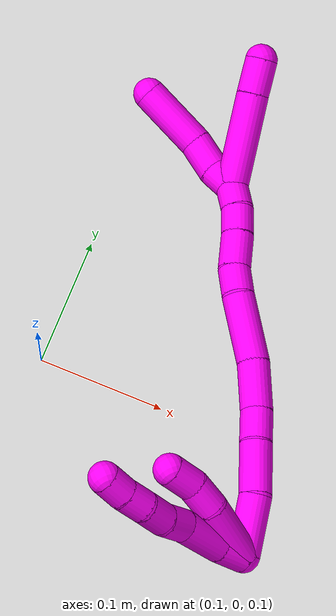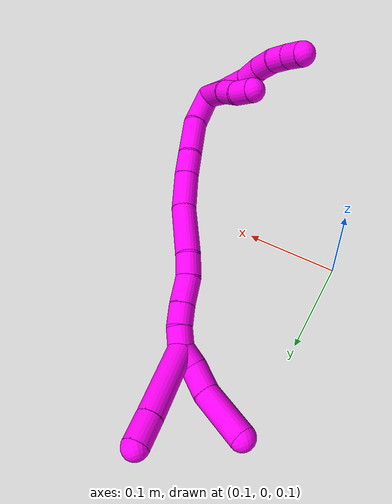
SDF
<sdf version="1.7">
 <world name="default">
  <model name="10">
   <static>0</static>
   <link name="10">
    <collision name="collision-cylinder-e_1_2_8">
     <pose>-0.009878 -0.005477 -0.004386 2.246 -0.953189 -1.64291</pose>
     <geometry><cylinder><radius>0.0125</radius><length>0.024234</length></cylinder></geometry>
     <surface>
      <friction><ode><mu>1.16</mu><mu2>1.16</mu2><slip1>0</slip1><slip2>0</slip2></ode></friction>
      <contact><ode><kp>1e+06</kp><kd>1</kd><max_vel>0</max_vel><min_depth>0.001</min_depth></ode></contact>
     </surface>
    </collision>
    <visual name="visual-cylinder-e_1_2_8">
     <pose>-0.009878 -0.005477 -0.004386 2.246 -0.953189 -1.64291</pose>
     <geometry><cylinder><radius>0.0125</radius><length>0.024234</length></cylinder></geometry>
     <material><ambient>1 0 0.964706 1</ambient></material>
    </visual>
    <collision name="collision-cylinder-e_2_8_9">
     <pose>-0.037315 -0.017435 -0.015379 2.36587 -1.08569 -1.95107</pose>
     <geometry><cylinder><radius>0.0125</radius><length>0.039695</length></cylinder></geometry>
     <surface>
      <friction><ode><mu>1.16</mu><mu2>1.16</mu2><slip1>0</slip1><slip2>0</slip2></ode></friction>
      <contact><ode><kp>1e+06</kp><kd>1</kd><max_vel>0</max_vel><min_depth>0.001</min_depth></ode></contact>
     </surface>
    </collision>
    <visual name="visual-cylinder-e_2_8_9">
     <pose>-0.037315 -0.017435 -0.015379 2.36587 -1.08569 -1.95107</pose>
     <geometry><cylinder><radius>0.0125</radius><length>0.039695</length></cylinder></geometry>
     <material><ambient>1 0 0.964706 1</ambient></material>
    </visual>
    <collision name="collision-cylinder-e_3_9_10">
     <pose>-0.065355 -0.02809 -0.023437 1.90524 -1.17177 -1.50166</pose>
     <geometry><cylinder><radius>0.0125</radius><length>0.022752</length></cylinder></geometry>
     <surface>
      <friction><ode><mu>1.16</mu><mu2>1.16</mu2><slip1>0</slip1><slip2>0</slip2></ode></friction>
      <contact><ode><kp>1e+06</kp><kd>1</kd><max_vel>0</max_vel><min_depth>0.001</min_depth></ode></contact>
     </surface>
    </collision>
    <visual name="visual-cylinder-e_3_9_10">
     <pose>-0.065355 -0.02809 -0.023437 1.90524 -1.17177 -1.50166</pose>
     <geometry><cylinder><radius>0.0125</radius><length>0.022752</length></cylinder></geometry>
     <material><ambient>1 0 0.964706 1</ambient></material>
    </visual>
    <collision name="collision-cylinder-e_4_10_11">
     <pose>-0.086082 -0.035325 -0.028633 2.45656 -1.12972 -2.11659</pose>
     <geometry><cylinder><radius>0.0125</radius><length>0.022657</length></cylinder></geometry>
     <surface>
      <friction><ode><mu>1.16</mu><mu2>1.16</mu2><slip1>0</slip1><slip2>0</slip2></ode></friction>
      <contact><ode><kp>1e+06</kp><kd>1</kd><max_vel>0</max_vel><min_depth>0.001</min_depth></ode></contact>
     </surface>
    </collision>
    <visual name="visual-cylinder-e_4_10_11">
     <pose>-0.086082 -0.035325 -0.028633 2.45656 -1.12972 -2.11659</pose>
     <geometry><cylinder><radius>0.0125</radius><length>0.022657</length></cylinder></geometry>
     <material><ambient>1 0 0.964706 1</ambient></material>
    </visual>
    <collision name="collision-cylinder-e_5_11_12">
     <pose>-0.104565 -0.041989 -0.03715 2.49478 -0.942933 -1.97841</pose>
     <geometry><cylinder><radius>0.0125</radius><length>0.020361</length></cylinder></geometry>
     <surface>
      <friction><ode><mu>1.16</mu><mu2>1.16</mu2><slip1>0</slip1><slip2>0</slip2></ode></friction>
      <contact><ode><kp>1e+06</kp><kd>1</kd><max_vel>0</max_vel><min_depth>0.001</min_depth></ode></contact>
     </surface>
    </collision>
    <visual name="visual-cylinder-e_5_11_12">
     <pose>-0.104565 -0.041989 -0.03715 2.49478 -0.942933 -1.97841</pose>
     <geometry><cylinder><radius>0.0125</radius><length>0.020361</length></cylinder></geometry>
     <material><ambient>1 0 0.964706 1</ambient></material>
    </visual>
    <collision name="collision-cylinder-e_6_12_6">
     <pose>-0.120924 -0.048193 -0.047429 2.70048 -0.927365 -2.2986</pose>
     <geometry><cylinder><radius>0.0125</radius><length>0.020301</length></cylinder></geometry>
     <surface>
      <friction><ode><mu>1.16</mu><mu2>1.16</mu2><slip1>0</slip1><slip2>0</slip2></ode></friction>
      <contact><ode><kp>1e+06</kp><kd>1</kd><max_vel>0</max_vel><min_depth>0.001</min_depth></ode></contact>
     </surface>
    </collision>
    <visual name="visual-cylinder-e_6_12_6">
     <pose>-0.120924 -0.048193 -0.047429 2.70048 -0.927365 -2.2986</pose>
     <geometry><cylinder><radius>0.0125</radius><length>0.020301</length></cylinder></geometry>
     <material><ambient>1 0 0.964706 1</ambient></material>
    </visual>
    <collision name="collision-cylinder-e_1_2_13">
     <pose>-0.022713 -0.000172 -0.013977 3.1293 -1.0191 -3.11959</pose>
     <geometry><cylinder><radius>0.0125</radius><length>0.053339</length></cylinder></geometry>
     <surface>
      <friction><ode><mu>1.16</mu><mu2>1.16</mu2><slip1>0</slip1><slip2>0</slip2></ode></friction>
      <contact><ode><kp>1e+06</kp><kd>1</kd><max_vel>0</max_vel><min_depth>0.001</min_depth></ode></contact>
     </surface>
    </collision>
    <visual name="visual-cylinder-e_1_2_13">
     <pose>-0.022713 -0.000172 -0.013977 3.1293 -1.0191 -3.11959</pose>
     <geometry><cylinder><radius>0.0125</radius><length>0.053339</length></cylinder></geometry>
     <material><ambient>1 0 0.964706 1</ambient></material>
    </visual>
    <collision name="collision-cylinder-e_2_13_14">
     <pose>-0.053968 -0.00194 -0.035544 2.93435 -0.833605 -2.68018</pose>
     <geometry><cylinder><radius>0.0125</radius><length>0.023077</length></cylinder></geometry>
     <surface>
      <friction><ode><mu>1.16</mu><mu2>1.16</mu2><slip1>0</slip1><slip2>0</slip2></ode></friction>
      <contact><ode><kp>1e+06</kp><kd>1</kd><max_vel>0</max_vel><min_depth>0.001</min_depth></ode></contact>
     </surface>
    </collision>
    <visual name="visual-cylinder-e_2_13_14">
     <pose>-0.053968 -0.00194 -0.035544 2.93435 -0.833605 -2.68018</pose>
     <geometry><cylinder><radius>0.0125</radius><length>0.023077</length></cylinder></geometry>
     <material><ambient>1 0 0.964706 1</ambient></material>
    </visual>
    <collision name="collision-cylinder-e_3_14_5">
     <pose>-0.071907 -0.00767 -0.048936 2.52249 -0.922143 -1.99758</pose>
     <geometry><cylinder><radius>0.0125</radius><length>0.023585</length></cylinder></geometry>
     <surface>
      <friction><ode><mu>1.16</mu><mu2>1.16</mu2><slip1>0</slip1><slip2>0</slip2></ode></friction>
      <contact><ode><kp>1e+06</kp><kd>1</kd><max_vel>0</max_vel><min_depth>0.001</min_depth></ode></contact>
     </surface>
    </collision>
    <visual name="visual-cylinder-e_3_14_5">
     <pose>-0.071907 -0.00767 -0.048936 2.52249 -0.922143 -1.99758</pose>
     <geometry><cylinder><radius>0.0125</radius><length>0.023585</length></cylinder></geometry>
     <material><ambient>1 0 0.964706 1</ambient></material>
    </visual>
    <collision name="collision-cylinder-e_1_2_15">
     <pose>-0.002042 0.014159 -0.018243 -2.48158 -0.088192 0.256226</pose>
     <geometry><cylinder><radius>0.0125</radius><length>0.046365</length></cylinder></geometry>
     <surface>
      <friction><ode><mu>1.16</mu><mu2>1.16</mu2><slip1>0</slip1><slip2>0</slip2></ode></friction>
      <contact><ode><kp>1e+06</kp><kd>1</kd><max_vel>0</max_vel><min_depth>0.001</min_depth></ode></contact>
     </surface>
    </collision>
    <visual name="visual-cylinder-e_1_2_15">
     <pose>-0.002042 0.014159 -0.018243 -2.48158 -0.088192 0.256226</pose>
     <geometry><cylinder><radius>0.0125</radius><length>0.046365</length></cylinder></geometry>
     <material><ambient>1 0 0.964706 1</ambient></material>
    </visual>
    <collision name="collision-cylinder-e_2_15_16">
     <pose>-0.004198 0.037073 -0.054923 -2.69822 -0.005605 0.024867</pose>
     <geometry><cylinder><radius>0.0125</radius><length>0.040823</length></cylinder></geometry>
     <surface>
      <friction><ode><mu>1.16</mu><mu2>1.16</mu2><slip1>0</slip1><slip2>0</slip2></ode></friction>
      <contact><ode><kp>1e+06</kp><kd>1</kd><max_vel>0</max_vel><min_depth>0.001</min_depth></ode></contact>
     </surface>
    </collision>
    <visual name="visual-cylinder-e_2_15_16">
     <pose>-0.004198 0.037073 -0.054923 -2.69822 -0.005605 0.024867</pose>
     <geometry><cylinder><radius>0.0125</radius><length>0.040823</length></cylinder></geometry>
     <material><ambient>1 0 0.964706 1</ambient></material>
    </visual>
    <collision name="collision-cylinder-e_3_16_17">
     <pose>-0.002561 0.051032 -0.085016 -2.72176 0.136382 -0.620422</pose>
     <geometry><cylinder><radius>0.0125</radius><length>0.025766</length></cylinder></geometry>
     <surface>
      <friction><ode><mu>1.16</mu><mu2>1.16</mu2><slip1>0</slip1><slip2>0</slip2></ode></friction>
      <contact><ode><kp>1e+06</kp><kd>1</kd><max_vel>0</max_vel><min_depth>0.001</min_depth></ode></contact>
     </surface>
    </collision>
    <visual name="visual-cylinder-e_3_16_17">
     <pose>-0.002561 0.051032 -0.085016 -2.72176 0.136382 -0.620422</pose>
     <geometry><cylinder><radius>0.0125</radius><length>0.025766</length></cylinder></geometry>
     <material><ambient>1 0 0.964706 1</ambient></material>
    </visual>
    <collision name="collision-cylinder-e_4_17_18">
     <pose>-0.0005 0.063295 -0.115109 -2.77588 0.015676 -0.084724</pose>
     <geometry><cylinder><radius>0.0125</radius><length>0.039492</length></cylinder></geometry>
     <surface>
      <friction><ode><mu>1.16</mu><mu2>1.16</mu2><slip1>0</slip1><slip2>0</slip2></ode></friction>
      <contact><ode><kp>1e+06</kp><kd>1</kd><max_vel>0</max_vel><min_depth>0.001</min_depth></ode></contact>
     </surface>
    </collision>
    <visual name="visual-cylinder-e_4_17_18">
     <pose>-0.0005 0.063295 -0.115109 -2.77588 0.015676 -0.084724</pose>
     <geometry><cylinder><radius>0.0125</radius><length>0.039492</length></cylinder></geometry>
     <material><ambient>1 0 0.964706 1</ambient></material>
    </visual>
    <collision name="collision-cylinder-e_5_18_19">
     <pose>-0.003103 0.076735 -0.159676 -2.90211 -0.107851 0.843442</pose>
     <geometry><cylinder><radius>0.0125</radius><length>0.054109</length></cylinder></geometry>
     <surface>
      <friction><ode><mu>1.16</mu><mu2>1.16</mu2><slip1>0</slip1><slip2>0</slip2></ode></friction>
      <contact><ode><kp>1e+06</kp><kd>1</kd><max_vel>0</max_vel><min_depth>0.001</min_depth></ode></contact>
     </surface>
    </collision>
    <visual name="visual-cylinder-e_5_18_19">
     <pose>-0.003103 0.076735 -0.159676 -2.90211 -0.107851 0.843442</pose>
     <geometry><cylinder><radius>0.0125</radius><length>0.054109</length></cylinder></geometry>
     <material><ambient>1 0 0.964706 1</ambient></material>
    </visual>
    <collision name="collision-cylinder-e_6_19_20">
     <pose>-0.005114 0.08614 -0.196813 -2.87336 0.078719 -0.567956</pose>
     <geometry><cylinder><radius>0.0125</radius><length>0.0229</length></cylinder></geometry>
     <surface>
      <friction><ode><mu>1.16</mu><mu2>1.16</mu2><slip1>0</slip1><slip2>0</slip2></ode></friction>
      <contact><ode><kp>1e+06</kp><kd>1</kd><max_vel>0</max_vel><min_depth>0.001</min_depth></ode></contact>
     </surface>
    </collision>
    <visual name="visual-cylinder-e_6_19_20">
     <pose>-0.005114 0.08614 -0.196813 -2.87336 0.078719 -0.567956</pose>
     <geometry><cylinder><radius>0.0125</radius><length>0.0229</length></cylinder></geometry>
     <material><ambient>1 0 0.964706 1</ambient></material>
    </visual>
    <collision name="collision-cylinder-e_7_20_21">
     <pose>-0.003296 0.096084 -0.220383 -2.63825 0.063883 -0.24727</pose>
     <geometry><cylinder><radius>0.0125</radius><length>0.028743</length></cylinder></geometry>
     <surface>
      <friction><ode><mu>1.16</mu><mu2>1.16</mu2><slip1>0</slip1><slip2>0</slip2></ode></friction>
      <contact><ode><kp>1e+06</kp><kd>1</kd><max_vel>0</max_vel><min_depth>0.001</min_depth></ode></contact>
     </surface>
    </collision>
    <visual name="visual-cylinder-e_7_20_21">
     <pose>-0.003296 0.096084 -0.220383 -2.63825 0.063883 -0.24727</pose>
     <geometry><cylinder><radius>0.0125</radius><length>0.028743</length></cylinder></geometry>
     <material><ambient>1 0 0.964706 1</ambient></material>
    </visual>
    <collision name="collision-cylinder-e_8_21_22">
     <pose>-0.001946 0.10733 -0.242868 -2.73021 0.039956 -0.190949</pose>
     <geometry><cylinder><radius>0.0125</radius><length>0.021667</length></cylinder></geometry>
     <surface>
      <friction><ode><mu>1.16</mu><mu2>1.16</mu2><slip1>0</slip1><slip2>0</slip2></ode></friction>
      <contact><ode><kp>1e+06</kp><kd>1</kd><max_vel>0</max_vel><min_depth>0.001</min_depth></ode></contact>
     </surface>
    </collision>
    <visual name="visual-cylinder-e_8_21_22">
     <pose>-0.001946 0.10733 -0.242868 -2.73021 0.039956 -0.190949</pose>
     <geometry><cylinder><radius>0.0125</radius><length>0.021667</length></cylinder></geometry>
     <material><ambient>1 0 0.964706 1</ambient></material>
    </visual>
    <collision name="collision-cylinder-e_9_22_1">
     <pose>-0.000895 0.11365 -0.262638 -2.94209 0.061505 -0.596389</pose>
     <geometry><cylinder><radius>0.0125</radius><length>0.020134</length></cylinder></geometry>
     <surface>
      <friction><ode><mu>1.16</mu><mu2>1.16</mu2><slip1>0</slip1><slip2>0</slip2></ode></friction>
      <contact><ode><kp>1e+06</kp><kd>1</kd><max_vel>0</max_vel><min_depth>0.001</min_depth></ode></contact>
     </surface>
    </collision>
    <visual name="visual-cylinder-e_9_22_1">
     <pose>-0.000895 0.11365 -0.262638 -2.94209 0.061505 -0.596389</pose>
     <geometry><cylinder><radius>0.0125</radius><length>0.020134</length></cylinder></geometry>
     <material><ambient>1 0 0.964706 1</ambient></material>
    </visual>
    <collision name="collision-cylinder-e_1_1_23">
     <pose>-0.0089 0.139263 -0.298532 -2.40495 -0.240518 0.60689</pose>
     <geometry><cylinder><radius>0.0125</radius><length>0.072407</length></cylinder></geometry>
     <surface>
      <friction><ode><mu>1.16</mu><mu2>1.16</mu2><slip1>0</slip1><slip2>0</slip2></ode></friction>
      <contact><ode><kp>1e+06</kp><kd>1</kd><max_vel>0</max_vel><min_depth>0.001</min_depth></ode></contact>
     </surface>
    </collision>
    <visual name="visual-cylinder-e_1_1_23">
     <pose>-0.0089 0.139263 -0.298532 -2.40495 -0.240518 0.60689</pose>
     <geometry><cylinder><radius>0.0125</radius><length>0.072407</length></cylinder></geometry>
     <material><ambient>1 0 0.964706 1</ambient></material>
    </visual>
    <collision name="collision-cylinder-e_2_23_4">
     <pose>-0.020561 0.172133 -0.334354 -2.38395 -0.221957 0.545938</pose>
     <geometry><cylinder><radius>0.0125</radius><length>0.027593</length></cylinder></geometry>
     <surface>
      <friction><ode><mu>1.16</mu><mu2>1.16</mu2><slip1>0</slip1><slip2>0</slip2></ode></friction>
      <contact><ode><kp>1e+06</kp><kd>1</kd><max_vel>0</max_vel><min_depth>0.001</min_depth></ode></contact>
     </surface>
    </collision>
    <visual name="visual-cylinder-e_2_23_4">
     <pose>-0.020561 0.172133 -0.334354 -2.38395 -0.221957 0.545938</pose>
     <geometry><cylinder><radius>0.0125</radius><length>0.027593</length></cylinder></geometry>
     <material><ambient>1 0 0.964706 1</ambient></material>
    </visual>
    <collision name="collision-cylinder-e_1_1_24">
     <pose>0.000151 0.112319 -0.28205 2.80717 0.042147 0.248453</pose>
     <geometry><cylinder><radius>0.0125</radius><length>0.020265</length></cylinder></geometry>
     <surface>
      <friction><ode><mu>1.16</mu><mu2>1.16</mu2><slip1>0</slip1><slip2>0</slip2></ode></friction>
      <contact><ode><kp>1e+06</kp><kd>1</kd><max_vel>0</max_vel><min_depth>0.001</min_depth></ode></contact>
     </surface>
    </collision>
    <visual name="visual-cylinder-e_1_1_24">
     <pose>0.000151 0.112319 -0.28205 2.80717 0.042147 0.248453</pose>
     <geometry><cylinder><radius>0.0125</radius><length>0.020265</length></cylinder></geometry>
     <material><ambient>1 0 0.964706 1</ambient></material>
    </visual>
    <collision name="collision-cylinder-e_2_24_25">
     <pose>-0.001792 0.107619 -0.304979 3.03897 -0.17457 -2.08018</pose>
     <geometry><cylinder><radius>0.0125</radius><length>0.027288</length></cylinder></geometry>
     <surface>
      <friction><ode><mu>1.16</mu><mu2>1.16</mu2><slip1>0</slip1><slip2>0</slip2></ode></friction>
      <contact><ode><kp>1e+06</kp><kd>1</kd><max_vel>0</max_vel><min_depth>0.001</min_depth></ode></contact>
     </surface>
    </collision>
    <visual name="visual-cylinder-e_2_24_25">
     <pose>-0.001792 0.107619 -0.304979 3.03897 -0.17457 -2.08018</pose>
     <geometry><cylinder><radius>0.0125</radius><length>0.027288</length></cylinder></geometry>
     <material><ambient>1 0 0.964706 1</ambient></material>
    </visual>
    <collision name="collision-cylinder-e_3_25_3">
     <pose>-0.013703 0.099371 -0.341784 2.85638 -0.372418 -1.83913</pose>
     <geometry><cylinder><radius>0.0125</radius><length>0.052446</length></cylinder></geometry>
     <surface>
      <friction><ode><mu>1.16</mu><mu2>1.16</mu2><slip1>0</slip1><slip2>0</slip2></ode></friction>
      <contact><ode><kp>1e+06</kp><kd>1</kd><max_vel>0</max_vel><min_depth>0.001</min_depth></ode></contact>
     </surface>
    </collision>
    <visual name="visual-cylinder-e_3_25_3">
     <pose>-0.013703 0.099371 -0.341784 2.85638 -0.372418 -1.83913</pose>
     <geometry><cylinder><radius>0.0125</radius><length>0.052446</length></cylinder></geometry>
     <material><ambient>1 0 0.964706 1</ambient></material>
    </visual>
    <collision name="collision-sphere-3">
     <pose>-0.023245 0.092498 -0.365223 0 -0 0</pose>
     <geometry><sphere><radius>0.0125</radius></sphere></geometry>
     <surface>
      <friction><ode><mu>1.16</mu><mu2>1.16</mu2><slip1>0</slip1><slip2>0</slip2></ode></friction>
      <contact><ode><kp>1e+06</kp><kd>1</kd><max_vel>0</max_vel><min_depth>0.001</min_depth></ode></contact>
     </surface>
    </collision>
    <visual name="visual-sphere-3">
     <pose>-0.023245 0.092498 -0.365223 0 -0 0</pose>
     <geometry><sphere><radius>0.0125</radius></sphere></geometry>
     <material><ambient>1 0 0.964706 1</ambient></material>
    </visual>
    <collision name="collision-sphere-25">
     <pose>-0.004162 0.106243 -0.318345 0 -0 0</pose>
     <geometry><sphere><radius>0.0125</radius></sphere></geometry>
     <surface>
      <friction><ode><mu>1.16</mu><mu2>1.16</mu2><slip1>0</slip1><slip2>0</slip2></ode></friction>
      <contact><ode><kp>1e+06</kp><kd>1</kd><max_vel>0</max_vel><min_depth>0.001</min_depth></ode></contact>
     </surface>
    </collision>
    <visual name="visual-sphere-25">
     <pose>-0.004162 0.106243 -0.318345 0 -0 0</pose>
     <geometry><sphere><radius>0.0125</radius></sphere></geometry>
     <material><ambient>1 0 0.964706 1</ambient></material>
    </visual>
    <collision name="collision-sphere-24">
     <pose>0.000578 0.108996 -0.291613 0 -0 0</pose>
     <geometry><sphere><radius>0.0125</radius></sphere></geometry>
     <surface>
      <friction><ode><mu>1.16</mu><mu2>1.16</mu2><slip1>0</slip1><slip2>0</slip2></ode></friction>
      <contact><ode><kp>1e+06</kp><kd>1</kd><max_vel>0</max_vel><min_depth>0.001</min_depth></ode></contact>
     </surface>
    </collision>
    <visual name="visual-sphere-24">
     <pose>0.000578 0.108996 -0.291613 0 -0 0</pose>
     <geometry><sphere><radius>0.0125</radius></sphere></geometry>
     <material><ambient>1 0 0.964706 1</ambient></material>
    </visual>
    <collision name="collision-sphere-4">
     <pose>-0.023598 0.181382 -0.34413 0 -0 0</pose>
     <geometry><sphere><radius>0.0125</radius></sphere></geometry>
     <surface>
      <friction><ode><mu>1.16</mu><mu2>1.16</mu2><slip1>0</slip1><slip2>0</slip2></ode></friction>
      <contact><ode><kp>1e+06</kp><kd>1</kd><max_vel>0</max_vel><min_depth>0.001</min_depth></ode></contact>
     </surface>
    </collision>
    <visual name="visual-sphere-4">
     <pose>-0.023598 0.181382 -0.34413 0 -0 0</pose>
     <geometry><sphere><radius>0.0125</radius></sphere></geometry>
     <material><ambient>1 0 0.964706 1</ambient></material>
    </visual>
    <collision name="collision-sphere-23">
     <pose>-0.017524 0.162885 -0.324577 0 -0 0</pose>
     <geometry><sphere><radius>0.0125</radius></sphere></geometry>
     <surface>
      <friction><ode><mu>1.16</mu><mu2>1.16</mu2><slip1>0</slip1><slip2>0</slip2></ode></friction>
      <contact><ode><kp>1e+06</kp><kd>1</kd><max_vel>0</max_vel><min_depth>0.001</min_depth></ode></contact>
     </surface>
    </collision>
    <visual name="visual-sphere-23">
     <pose>-0.017524 0.162885 -0.324577 0 -0 0</pose>
     <geometry><sphere><radius>0.0125</radius></sphere></geometry>
     <material><ambient>1 0 0.964706 1</ambient></material>
    </visual>
    <collision name="collision-sphere-1">
     <pose>-0.000276 0.115642 -0.272487 0 -0 0</pose>
     <geometry><sphere><radius>0.0125</radius></sphere></geometry>
     <surface>
      <friction><ode><mu>1.16</mu><mu2>1.16</mu2><slip1>0</slip1><slip2>0</slip2></ode></friction>
      <contact><ode><kp>1e+06</kp><kd>1</kd><max_vel>0</max_vel><min_depth>0.001</min_depth></ode></contact>
     </surface>
    </collision>
    <visual name="visual-sphere-1">
     <pose>-0.000276 0.115642 -0.272487 0 -0 0</pose>
     <geometry><sphere><radius>0.0125</radius></sphere></geometry>
     <material><ambient>1 0 0.964706 1</ambient></material>
    </visual>
    <collision name="collision-sphere-22">
     <pose>-0.001513 0.111659 -0.25279 0 -0 0</pose>
     <geometry><sphere><radius>0.0125</radius></sphere></geometry>
     <surface>
      <friction><ode><mu>1.16</mu><mu2>1.16</mu2><slip1>0</slip1><slip2>0</slip2></ode></friction>
      <contact><ode><kp>1e+06</kp><kd>1</kd><max_vel>0</max_vel><min_depth>0.001</min_depth></ode></contact>
     </surface>
    </collision>
    <visual name="visual-sphere-22">
     <pose>-0.001513 0.111659 -0.25279 0 -0 0</pose>
     <geometry><sphere><radius>0.0125</radius></sphere></geometry>
     <material><ambient>1 0 0.964706 1</ambient></material>
    </visual>
    <collision name="collision-sphere-21">
     <pose>-0.002379 0.103002 -0.232946 0 -0 0</pose>
     <geometry><sphere><radius>0.0125</radius></sphere></geometry>
     <surface>
      <friction><ode><mu>1.16</mu><mu2>1.16</mu2><slip1>0</slip1><slip2>0</slip2></ode></friction>
      <contact><ode><kp>1e+06</kp><kd>1</kd><max_vel>0</max_vel><min_depth>0.001</min_depth></ode></contact>
     </surface>
    </collision>
    <visual name="visual-sphere-21">
     <pose>-0.002379 0.103002 -0.232946 0 -0 0</pose>
     <geometry><sphere><radius>0.0125</radius></sphere></geometry>
     <material><ambient>1 0 0.964706 1</ambient></material>
    </visual>
    <collision name="collision-sphere-12">
     <pose>-0.112804 -0.045593 -0.041923 0 -0 0</pose>
     <geometry><sphere><radius>0.0125</radius></sphere></geometry>
     <surface>
      <friction><ode><mu>1.16</mu><mu2>1.16</mu2><slip1>0</slip1><slip2>0</slip2></ode></friction>
      <contact><ode><kp>1e+06</kp><kd>1</kd><max_vel>0</max_vel><min_depth>0.001</min_depth></ode></contact>
     </surface>
    </collision>
    <visual name="visual-sphere-12">
     <pose>-0.112804 -0.045593 -0.041923 0 -0 0</pose>
     <geometry><sphere><radius>0.0125</radius></sphere></geometry>
     <material><ambient>1 0 0.964706 1</ambient></material>
    </visual>
    <collision name="collision-sphere-11">
     <pose>-0.096326 -0.038385 -0.032378 0 -0 0</pose>
     <geometry><sphere><radius>0.0125</radius></sphere></geometry>
     <surface>
      <friction><ode><mu>1.16</mu><mu2>1.16</mu2><slip1>0</slip1><slip2>0</slip2></ode></friction>
      <contact><ode><kp>1e+06</kp><kd>1</kd><max_vel>0</max_vel><min_depth>0.001</min_depth></ode></contact>
     </surface>
    </collision>
    <visual name="visual-sphere-11">
     <pose>-0.096326 -0.038385 -0.032378 0 -0 0</pose>
     <geometry><sphere><radius>0.0125</radius></sphere></geometry>
     <material><ambient>1 0 0.964706 1</ambient></material>
    </visual>
    <collision name="collision-sphere-10">
     <pose>-0.075837 -0.032265 -0.024888 0 -0 0</pose>
     <geometry><sphere><radius>0.0125</radius></sphere></geometry>
     <surface>
      <friction><ode><mu>1.16</mu><mu2>1.16</mu2><slip1>0</slip1><slip2>0</slip2></ode></friction>
      <contact><ode><kp>1e+06</kp><kd>1</kd><max_vel>0</max_vel><min_depth>0.001</min_depth></ode></contact>
     </surface>
    </collision>
    <visual name="visual-sphere-10">
     <pose>-0.075837 -0.032265 -0.024888 0 -0 0</pose>
     <geometry><sphere><radius>0.0125</radius></sphere></geometry>
     <material><ambient>1 0 0.964706 1</ambient></material>
    </visual>
    <collision name="collision-sphere-9">
     <pose>-0.054872 -0.023915 -0.021986 0 -0 0</pose>
     <geometry><sphere><radius>0.0125</radius></sphere></geometry>
     <surface>
      <friction><ode><mu>1.16</mu><mu2>1.16</mu2><slip1>0</slip1><slip2>0</slip2></ode></friction>
      <contact><ode><kp>1e+06</kp><kd>1</kd><max_vel>0</max_vel><min_depth>0.001</min_depth></ode></contact>
     </surface>
    </collision>
    <visual name="visual-sphere-9">
     <pose>-0.054872 -0.023915 -0.021986 0 -0 0</pose>
     <geometry><sphere><radius>0.0125</radius></sphere></geometry>
     <material><ambient>1 0 0.964706 1</ambient></material>
    </visual>
    <collision name="collision-sphere-2">
     <geometry><sphere><radius>0.0125</radius></sphere></geometry>
     <surface>
      <friction><ode><mu>1.16</mu><mu2>1.16</mu2><slip1>0</slip1><slip2>0</slip2></ode></friction>
      <contact><ode><kp>1e+06</kp><kd>1</kd><max_vel>0</max_vel><min_depth>0.001</min_depth></ode></contact>
     </surface>
    </collision>
    <visual name="visual-sphere-2">
     <geometry><sphere><radius>0.0125</radius></sphere></geometry>
     <material><ambient>1 0 0.964706 1</ambient></material>
    </visual>
    <collision name="collision-sphere-19">
     <pose>-0.006015 0.083115 -0.185806 0 -0 0</pose>
     <geometry><sphere><radius>0.0125</radius></sphere></geometry>
     <surface>
      <friction><ode><mu>1.16</mu><mu2>1.16</mu2><slip1>0</slip1><slip2>0</slip2></ode></friction>
      <contact><ode><kp>1e+06</kp><kd>1</kd><max_vel>0</max_vel><min_depth>0.001</min_depth></ode></contact>
     </surface>
    </collision>
    <visual name="visual-sphere-19">
     <pose>-0.006015 0.083115 -0.185806 0 -0 0</pose>
     <geometry><sphere><radius>0.0125</radius></sphere></geometry>
     <material><ambient>1 0 0.964706 1</ambient></material>
    </visual>
    <collision name="collision-sphere-8">
     <pose>-0.019757 -0.010954 -0.008772 0 -0 0</pose>
     <geometry><sphere><radius>0.0125</radius></sphere></geometry>
     <surface>
      <friction><ode><mu>1.16</mu><mu2>1.16</mu2><slip1>0</slip1><slip2>0</slip2></ode></friction>
      <contact><ode><kp>1e+06</kp><kd>1</kd><max_vel>0</max_vel><min_depth>0.001</min_depth></ode></contact>
     </surface>
    </collision>
    <visual name="visual-sphere-8">
     <pose>-0.019757 -0.010954 -0.008772 0 -0 0</pose>
     <geometry><sphere><radius>0.0125</radius></sphere></geometry>
     <material><ambient>1 0 0.964706 1</ambient></material>
    </visual>
    <collision name="collision-sphere-6">
     <pose>-0.129045 -0.050793 -0.052936 0 -0 0</pose>
     <geometry><sphere><radius>0.0125</radius></sphere></geometry>
     <surface>
      <friction><ode><mu>1.16</mu><mu2>1.16</mu2><slip1>0</slip1><slip2>0</slip2></ode></friction>
      <contact><ode><kp>1e+06</kp><kd>1</kd><max_vel>0</max_vel><min_depth>0.001</min_depth></ode></contact>
     </surface>
    </collision>
    <visual name="visual-sphere-6">
     <pose>-0.129045 -0.050793 -0.052936 0 -0 0</pose>
     <geometry><sphere><radius>0.0125</radius></sphere></geometry>
     <material><ambient>1 0 0.964706 1</ambient></material>
    </visual>
    <collision name="collision-sphere-13">
     <pose>-0.045425 -0.000344 -0.027954 0 -0 0</pose>
     <geometry><sphere><radius>0.0125</radius></sphere></geometry>
     <surface>
      <friction><ode><mu>1.16</mu><mu2>1.16</mu2><slip1>0</slip1><slip2>0</slip2></ode></friction>
      <contact><ode><kp>1e+06</kp><kd>1</kd><max_vel>0</max_vel><min_depth>0.001</min_depth></ode></contact>
     </surface>
    </collision>
    <visual name="visual-sphere-13">
     <pose>-0.045425 -0.000344 -0.027954 0 -0 0</pose>
     <geometry><sphere><radius>0.0125</radius></sphere></geometry>
     <material><ambient>1 0 0.964706 1</ambient></material>
    </visual>
    <collision name="collision-sphere-14">
     <pose>-0.06251 -0.003536 -0.043135 0 -0 0</pose>
     <geometry><sphere><radius>0.0125</radius></sphere></geometry>
     <surface>
      <friction><ode><mu>1.16</mu><mu2>1.16</mu2><slip1>0</slip1><slip2>0</slip2></ode></friction>
      <contact><ode><kp>1e+06</kp><kd>1</kd><max_vel>0</max_vel><min_depth>0.001</min_depth></ode></contact>
     </surface>
    </collision>
    <visual name="visual-sphere-14">
     <pose>-0.06251 -0.003536 -0.043135 0 -0 0</pose>
     <geometry><sphere><radius>0.0125</radius></sphere></geometry>
     <material><ambient>1 0 0.964706 1</ambient></material>
    </visual>
    <collision name="collision-sphere-5">
     <pose>-0.081305 -0.011804 -0.054738 0 -0 0</pose>
     <geometry><sphere><radius>0.0125</radius></sphere></geometry>
     <surface>
      <friction><ode><mu>1.16</mu><mu2>1.16</mu2><slip1>0</slip1><slip2>0</slip2></ode></friction>
      <contact><ode><kp>1e+06</kp><kd>1</kd><max_vel>0</max_vel><min_depth>0.001</min_depth></ode></contact>
     </surface>
    </collision>
    <visual name="visual-sphere-5">
     <pose>-0.081305 -0.011804 -0.054738 0 -0 0</pose>
     <geometry><sphere><radius>0.0125</radius></sphere></geometry>
     <material><ambient>1 0 0.964706 1</ambient></material>
    </visual>
    <collision name="collision-sphere-15">
     <pose>-0.004084 0.028317 -0.036485 0 -0 0</pose>
     <geometry><sphere><radius>0.0125</radius></sphere></geometry>
     <surface>
      <friction><ode><mu>1.16</mu><mu2>1.16</mu2><slip1>0</slip1><slip2>0</slip2></ode></friction>
      <contact><ode><kp>1e+06</kp><kd>1</kd><max_vel>0</max_vel><min_depth>0.001</min_depth></ode></contact>
     </surface>
    </collision>
    <visual name="visual-sphere-15">
     <pose>-0.004084 0.028317 -0.036485 0 -0 0</pose>
     <geometry><sphere><radius>0.0125</radius></sphere></geometry>
     <material><ambient>1 0 0.964706 1</ambient></material>
    </visual>
    <collision name="collision-sphere-16">
     <pose>-0.004313 0.045829 -0.073361 0 -0 0</pose>
     <geometry><sphere><radius>0.0125</radius></sphere></geometry>
     <surface>
      <friction><ode><mu>1.16</mu><mu2>1.16</mu2><slip1>0</slip1><slip2>0</slip2></ode></friction>
      <contact><ode><kp>1e+06</kp><kd>1</kd><max_vel>0</max_vel><min_depth>0.001</min_depth></ode></contact>
     </surface>
    </collision>
    <visual name="visual-sphere-16">
     <pose>-0.004313 0.045829 -0.073361 0 -0 0</pose>
     <geometry><sphere><radius>0.0125</radius></sphere></geometry>
     <material><ambient>1 0 0.964706 1</ambient></material>
    </visual>
    <collision name="collision-sphere-17">
     <pose>-0.000809 0.056234 -0.096671 0 -0 0</pose>
     <geometry><sphere><radius>0.0125</radius></sphere></geometry>
     <surface>
      <friction><ode><mu>1.16</mu><mu2>1.16</mu2><slip1>0</slip1><slip2>0</slip2></ode></friction>
      <contact><ode><kp>1e+06</kp><kd>1</kd><max_vel>0</max_vel><min_depth>0.001</min_depth></ode></contact>
     </surface>
    </collision>
    <visual name="visual-sphere-17">
     <pose>-0.000809 0.056234 -0.096671 0 -0 0</pose>
     <geometry><sphere><radius>0.0125</radius></sphere></geometry>
     <material><ambient>1 0 0.964706 1</ambient></material>
    </visual>
    <collision name="collision-sphere-18">
     <pose>-0.00019 0.070355 -0.133547 0 -0 0</pose>
     <geometry><sphere><radius>0.0125</radius></sphere></geometry>
     <surface>
      <friction><ode><mu>1.16</mu><mu2>1.16</mu2><slip1>0</slip1><slip2>0</slip2></ode></friction>
      <contact><ode><kp>1e+06</kp><kd>1</kd><max_vel>0</max_vel><min_depth>0.001</min_depth></ode></contact>
     </surface>
    </collision>
    <visual name="visual-sphere-18">
     <pose>-0.00019 0.070355 -0.133547 0 -0 0</pose>
     <geometry><sphere><radius>0.0125</radius></sphere></geometry>
     <material><ambient>1 0 0.964706 1</ambient></material>
    </visual>
    <collision name="collision-sphere-20">
     <pose>-0.004214 0.089166 -0.207819 0 -0 0</pose>
     <geometry><sphere><radius>0.0125</radius></sphere></geometry>
     <surface>
      <friction><ode><mu>1.16</mu><mu2>1.16</mu2><slip1>0</slip1><slip2>0</slip2></ode></friction>
      <contact><ode><kp>1e+06</kp><kd>1</kd><max_vel>0</max_vel><min_depth>0.001</min_depth></ode></contact>
     </surface>
    </collision>
    <visual name="visual-sphere-20">
     <pose>-0.004214 0.089166 -0.207819 0 -0 0</pose>
     <geometry><sphere><radius>0.0125</radius></sphere></geometry>
     <material><ambient>1 0 0.964706 1</ambient></material>
    </visual>
    <inertial>
     <pose>-0.022217 0.05388 -0.145332 0 -0 0</pose>
     <mass>0.75</mass>
     <inertia><ixx>4.4e-05</ixx><ixy>0</ixy><ixz>0</ixz><iyy>-8e-06</iyy><iyz>0</iyz><izz>-3e-05</izz></inertia>
    </inertial>
   </link>
   <pose>0.305672 -0.095868 0.189796 0.703651 1.26097 -0.031584</pose>
  </model>
 </world>
</sdf>
